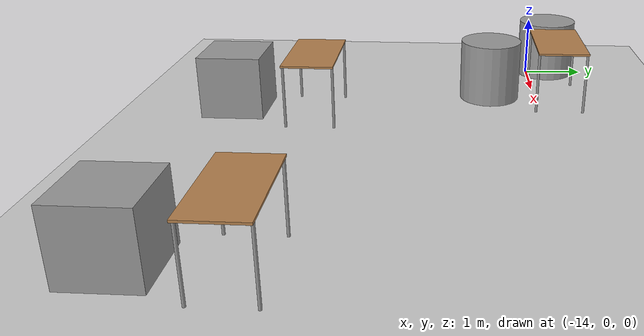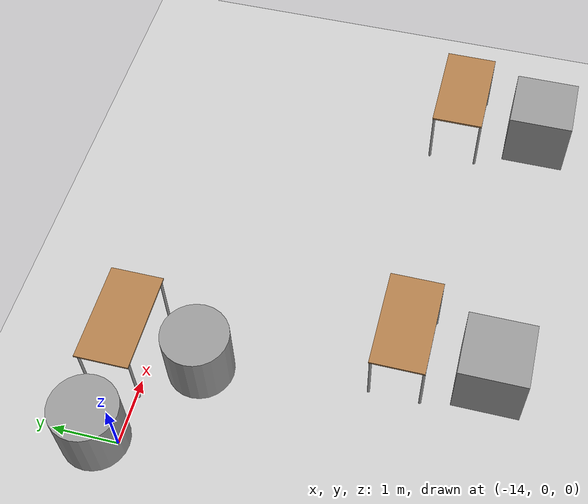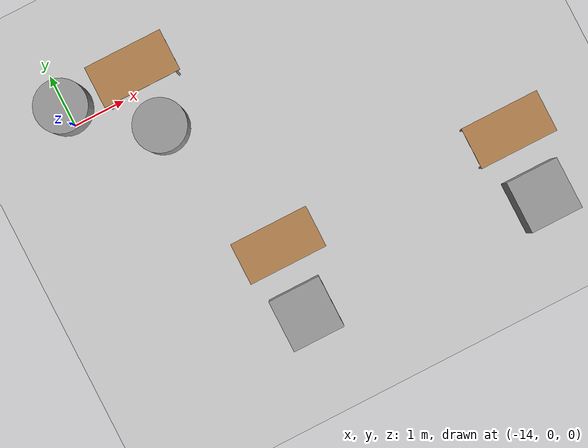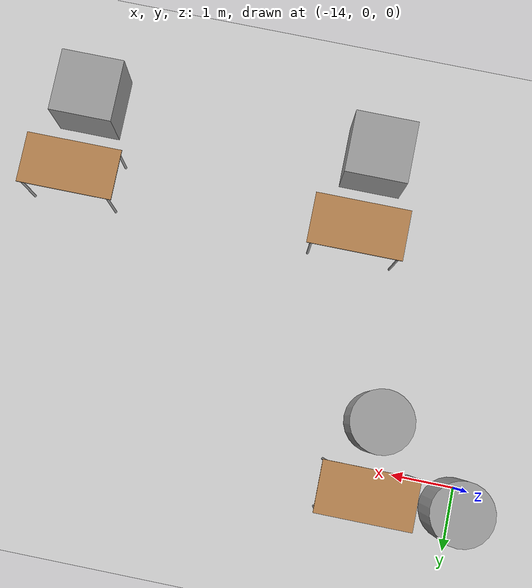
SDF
<sdf version="1.7">
 <world name="default">
  <model name="ground_plane">
   <static>1</static>
   <link name="link">
    <collision name="collision">
     <geometry><plane><normal>0 0 1</normal><size>100 100</size></plane></geometry>
     <surface>
      <contact><collide_bitmask>65535</collide_bitmask></contact>
      <friction><ode><mu>100</mu><mu2>50</mu2></ode></friction>
     </surface>
    </collision>
    <visual name="visual">
     <cast_shadows>0</cast_shadows>
     <geometry><plane><normal>0 0 1</normal><size>100 100</size></plane></geometry>
     <material>
      <script><uri>file://media/materials/scripts/gazebo.material</uri><name>Gazebo/Grey</name></script>
     </material>
    </visual>
   </link>
  </model>
  <model name="table">
   <static>1</static>
   <link name="link">
    <collision name="surface">
     <pose>0 0 1 0 -0 0</pose>
     <geometry><box><size>1.5 0.8 0.03</size></box></geometry>
     <surface><friction><ode><mu>0.6</mu><mu2>0.6</mu2></ode></friction></surface>
    </collision>
    <visual name="visual1">
     <pose>0 0 1 0 -0 0</pose>
     <geometry><box><size>1.5 0.8 0.03</size></box></geometry>
     <material>
      <script><uri>file://media/materials/scripts/gazebo.material</uri><name>Gazebo/Wood</name></script>
     </material>
    </visual>
    <collision name="front_left_leg">
     <pose>0.68 0.38 0.5 0 -0 0</pose>
     <geometry><cylinder><radius>0.02</radius><length>1</length></cylinder></geometry>
    </collision>
    <visual name="front_left_leg">
     <pose>0.68 0.38 0.5 0 -0 0</pose>
     <geometry><cylinder><radius>0.02</radius><length>1</length></cylinder></geometry>
     <material>
      <script><uri>file://media/materials/scripts/gazebo.material</uri><name>Gazebo/Grey</name></script>
     </material>
    </visual>
    <collision name="front_right_leg">
     <pose>0.68 -0.38 0.5 0 -0 0</pose>
     <geometry><cylinder><radius>0.02</radius><length>1</length></cylinder></geometry>
    </collision>
    <visual name="front_right_leg">
     <pose>0.68 -0.38 0.5 0 -0 0</pose>
     <geometry><cylinder><radius>0.02</radius><length>1</length></cylinder></geometry>
     <material>
      <script><uri>file://media/materials/scripts/gazebo.material</uri><name>Gazebo/Grey</name></script>
     </material>
    </visual>
    <collision name="back_right_leg">
     <pose>-0.68 -0.38 0.5 0 -0 0</pose>
     <geometry><cylinder><radius>0.02</radius><length>1</length></cylinder></geometry>
    </collision>
    <visual name="back_right_leg">
     <pose>-0.68 -0.38 0.5 0 -0 0</pose>
     <geometry><cylinder><radius>0.02</radius><length>1</length></cylinder></geometry>
     <material>
      <script><uri>file://media/materials/scripts/gazebo.material</uri><name>Gazebo/Grey</name></script>
     </material>
    </visual>
    <collision name="back_left_leg">
     <pose>-0.68 0.38 0.5 0 -0 0</pose>
     <geometry><cylinder><radius>0.02</radius><length>1</length></cylinder></geometry>
    </collision>
    <visual name="back_left_leg">
     <pose>-0.68 0.38 0.5 0 -0 0</pose>
     <geometry><cylinder><radius>0.02</radius><length>1</length></cylinder></geometry>
     <material>
      <script><uri>file://media/materials/scripts/gazebo.material</uri><name>Gazebo/Grey</name></script>
     </material>
    </visual>
   </link>
   <pose>-11.6852 -3.63136 0 0 -0 0</pose>
  </model>
  <model name="table_0">
   <static>1</static>
   <link name="link">
    <collision name="surface">
     <pose>0 0 1 0 -0 0</pose>
     <geometry><box><size>1.5 0.8 0.03</size></box></geometry>
     <surface><friction><ode><mu>0.6</mu><mu2>0.6</mu2></ode></friction></surface>
    </collision>
    <visual name="visual1">
     <pose>0 0 1 0 -0 0</pose>
     <geometry><box><size>1.5 0.8 0.03</size></box></geometry>
     <material>
      <script><uri>file://media/materials/scripts/gazebo.material</uri><name>Gazebo/Wood</name></script>
     </material>
    </visual>
    <collision name="front_left_leg">
     <pose>0.68 0.38 0.5 0 -0 0</pose>
     <geometry><cylinder><radius>0.02</radius><length>1</length></cylinder></geometry>
    </collision>
    <visual name="front_left_leg">
     <pose>0.68 0.38 0.5 0 -0 0</pose>
     <geometry><cylinder><radius>0.02</radius><length>1</length></cylinder></geometry>
     <material>
      <script><uri>file://media/materials/scripts/gazebo.material</uri><name>Gazebo/Grey</name></script>
     </material>
    </visual>
    <collision name="front_right_leg">
     <pose>0.68 -0.38 0.5 0 -0 0</pose>
     <geometry><cylinder><radius>0.02</radius><length>1</length></cylinder></geometry>
    </collision>
    <visual name="front_right_leg">
     <pose>0.68 -0.38 0.5 0 -0 0</pose>
     <geometry><cylinder><radius>0.02</radius><length>1</length></cylinder></geometry>
     <material>
      <script><uri>file://media/materials/scripts/gazebo.material</uri><name>Gazebo/Grey</name></script>
     </material>
    </visual>
    <collision name="back_right_leg">
     <pose>-0.68 -0.38 0.5 0 -0 0</pose>
     <geometry><cylinder><radius>0.02</radius><length>1</length></cylinder></geometry>
    </collision>
    <visual name="back_right_leg">
     <pose>-0.68 -0.38 0.5 0 -0 0</pose>
     <geometry><cylinder><radius>0.02</radius><length>1</length></cylinder></geometry>
     <material>
      <script><uri>file://media/materials/scripts/gazebo.material</uri><name>Gazebo/Grey</name></script>
     </material>
    </visual>
    <collision name="back_left_leg">
     <pose>-0.68 0.38 0.5 0 -0 0</pose>
     <geometry><cylinder><radius>0.02</radius><length>1</length></cylinder></geometry>
    </collision>
    <visual name="back_left_leg">
     <pose>-0.68 0.38 0.5 0 -0 0</pose>
     <geometry><cylinder><radius>0.02</radius><length>1</length></cylinder></geometry>
     <material>
      <script><uri>file://media/materials/scripts/gazebo.material</uri><name>Gazebo/Grey</name></script>
     </material>
    </visual>
   </link>
   <pose>-7.10475 -3.67905 0 0 -0 0</pose>
  </model>
  <model name="table_1">
   <static>1</static>
   <link name="link">
    <collision name="surface">
     <pose>0 0 1 0 -0 0</pose>
     <geometry><box><size>1.5 0.8 0.03</size></box></geometry>
     <surface><friction><ode><mu>0.6</mu><mu2>0.6</mu2></ode></friction></surface>
    </collision>
    <visual name="visual1">
     <pose>0 0 1 0 -0 0</pose>
     <geometry><box><size>1.5 0.8 0.03</size></box></geometry>
     <material>
      <script><uri>file://media/materials/scripts/gazebo.material</uri><name>Gazebo/Wood</name></script>
     </material>
    </visual>
    <collision name="front_left_leg">
     <pose>0.68 0.38 0.5 0 -0 0</pose>
     <geometry><cylinder><radius>0.02</radius><length>1</length></cylinder></geometry>
    </collision>
    <visual name="front_left_leg">
     <pose>0.68 0.38 0.5 0 -0 0</pose>
     <geometry><cylinder><radius>0.02</radius><length>1</length></cylinder></geometry>
     <material>
      <script><uri>file://media/materials/scripts/gazebo.material</uri><name>Gazebo/Grey</name></script>
     </material>
    </visual>
    <collision name="front_right_leg">
     <pose>0.68 -0.38 0.5 0 -0 0</pose>
     <geometry><cylinder><radius>0.02</radius><length>1</length></cylinder></geometry>
    </collision>
    <visual name="front_right_leg">
     <pose>0.68 -0.38 0.5 0 -0 0</pose>
     <geometry><cylinder><radius>0.02</radius><length>1</length></cylinder></geometry>
     <material>
      <script><uri>file://media/materials/scripts/gazebo.material</uri><name>Gazebo/Grey</name></script>
     </material>
    </visual>
    <collision name="back_right_leg">
     <pose>-0.68 -0.38 0.5 0 -0 0</pose>
     <geometry><cylinder><radius>0.02</radius><length>1</length></cylinder></geometry>
    </collision>
    <visual name="back_right_leg">
     <pose>-0.68 -0.38 0.5 0 -0 0</pose>
     <geometry><cylinder><radius>0.02</radius><length>1</length></cylinder></geometry>
     <material>
      <script><uri>file://media/materials/scripts/gazebo.material</uri><name>Gazebo/Grey</name></script>
     </material>
    </visual>
    <collision name="back_left_leg">
     <pose>-0.68 0.38 0.5 0 -0 0</pose>
     <geometry><cylinder><radius>0.02</radius><length>1</length></cylinder></geometry>
    </collision>
    <visual name="back_left_leg">
     <pose>-0.68 0.38 0.5 0 -0 0</pose>
     <geometry><cylinder><radius>0.02</radius><length>1</length></cylinder></geometry>
     <material>
      <script><uri>file://media/materials/scripts/gazebo.material</uri><name>Gazebo/Grey</name></script>
     </material>
    </visual>
   </link>
   <pose>-12.5601 0.343493 0 0 -0 0</pose>
  </model>
  <model name="unit_box">
   <pose>-11.7987 -4.94473 0.499995 -1e-05 -0 -0</pose>
   <link name="link">
    <inertial>
     <mass>1</mass>
     <inertia>
      <ixx>0.166667</ixx>
      <ixy>0</ixy>
      <ixz>0</ixz>
      <iyy>0.166667</iyy>
      <iyz>0</iyz>
      <izz>0.166667</izz>
     </inertia>
    </inertial>
    <collision name="collision"><geometry><box><size>1 1 1</size></box></geometry></collision>
    <visual name="visual">
     <geometry><box><size>1 1 1</size></box></geometry>
     <material>
      <script><name>Gazebo/Grey</name><uri>file://media/materials/scripts/gazebo.material</uri></script>
     </material>
    </visual>
   </link>
  </model>
  <model name="unit_box_0">
   <pose>-7.07918 -5.00069 0.499995 0 1e-05 0</pose>
   <link name="link">
    <inertial>
     <mass>1</mass>
     <inertia>
      <ixx>0.166667</ixx>
      <ixy>0</ixy>
      <ixz>0</ixz>
      <iyy>0.166667</iyy>
      <iyz>0</iyz>
      <izz>0.166667</izz>
     </inertia>
    </inertial>
    <collision name="collision"><geometry><box><size>1 1 1</size></box></geometry></collision>
    <visual name="visual">
     <geometry><box><size>1 1 1</size></box></geometry>
     <material>
      <script><name>Gazebo/Grey</name><uri>file://media/materials/scripts/gazebo.material</uri></script>
     </material>
    </visual>
   </link>
  </model>
  <model name="unit_cylinder">
   <pose>-12.5841 -0.773449 0.499993 -3e-06 -4e-06 -0</pose>
   <link name="link">
    <inertial>
     <mass>1</mass>
     <inertia><ixx>0.145833</ixx><ixy>0</ixy><ixz>0</ixz><iyy>0.145833</iyy><iyz>0</iyz><izz>0.125</izz></inertia>
    </inertial>
    <collision name="collision">
     <geometry><cylinder><radius>0.5</radius><length>1</length></cylinder></geometry>
    </collision>
    <visual name="visual">
     <geometry><cylinder><radius>0.5</radius><length>1</length></cylinder></geometry>
     <material>
      <script><name>Gazebo/Grey</name><uri>file://media/materials/scripts/gazebo.material</uri></script>
     </material>
    </visual>
   </link>
  </model>
  <model name="unit_cylinder_0">
   <pose>-13.9981 0.337332 0.499997 3e-06 4e-06 -0</pose>
   <link name="link">
    <inertial>
     <mass>1</mass>
     <inertia><ixx>0.145833</ixx><ixy>0</ixy><ixz>0</ixz><iyy>0.145833</iyy><iyz>0</iyz><izz>0.125</izz></inertia>
    </inertial>
    <collision name="collision">
     <geometry><cylinder><radius>0.5</radius><length>1</length></cylinder></geometry>
    </collision>
    <visual name="visual">
     <geometry><cylinder><radius>0.5</radius><length>1</length></cylinder></geometry>
     <material>
      <script><name>Gazebo/Grey</name><uri>file://media/materials/scripts/gazebo.material</uri></script>
     </material>
    </visual>
   </link>
  </model>
 </world>
</sdf>
